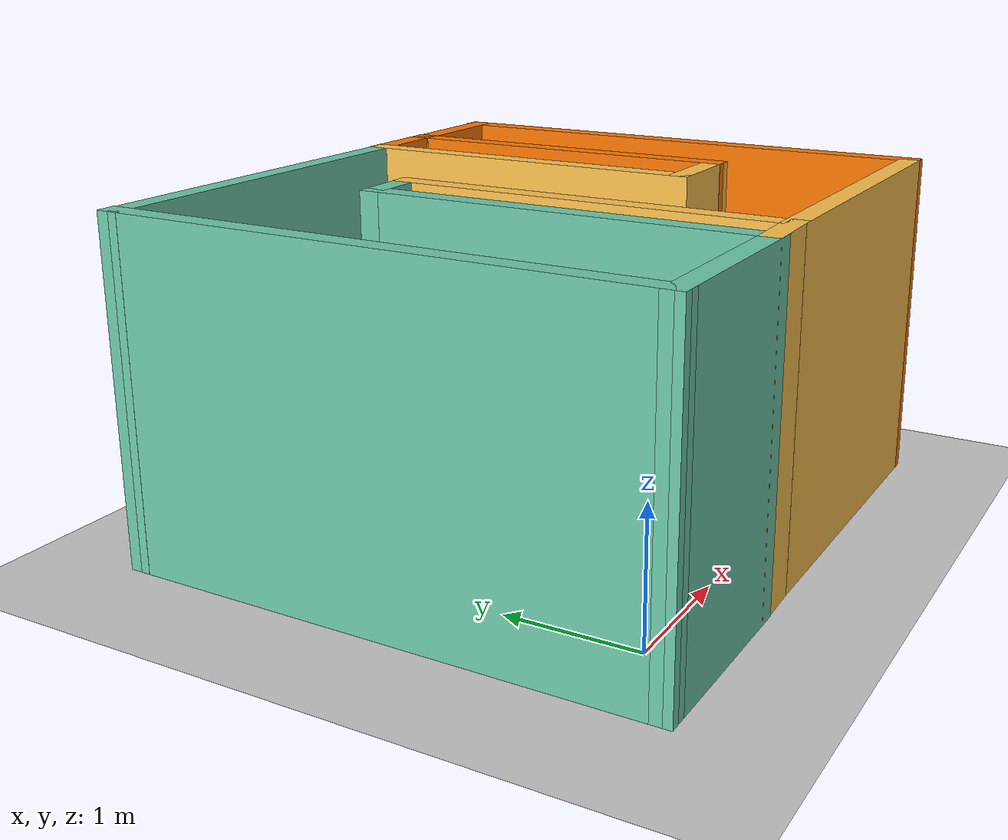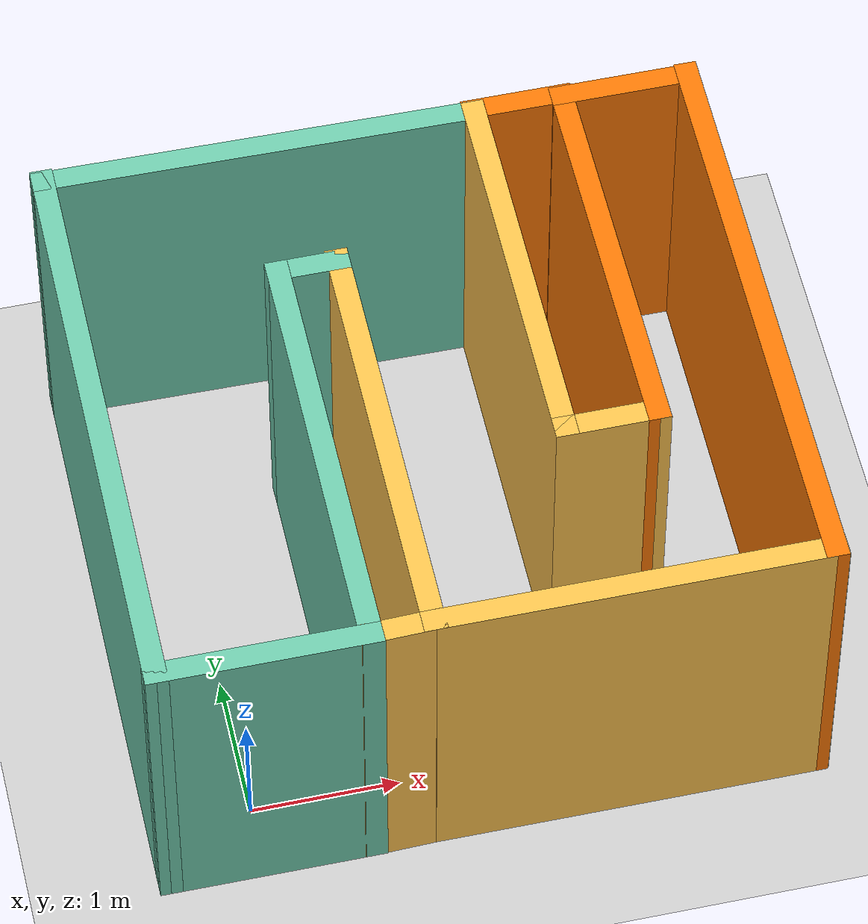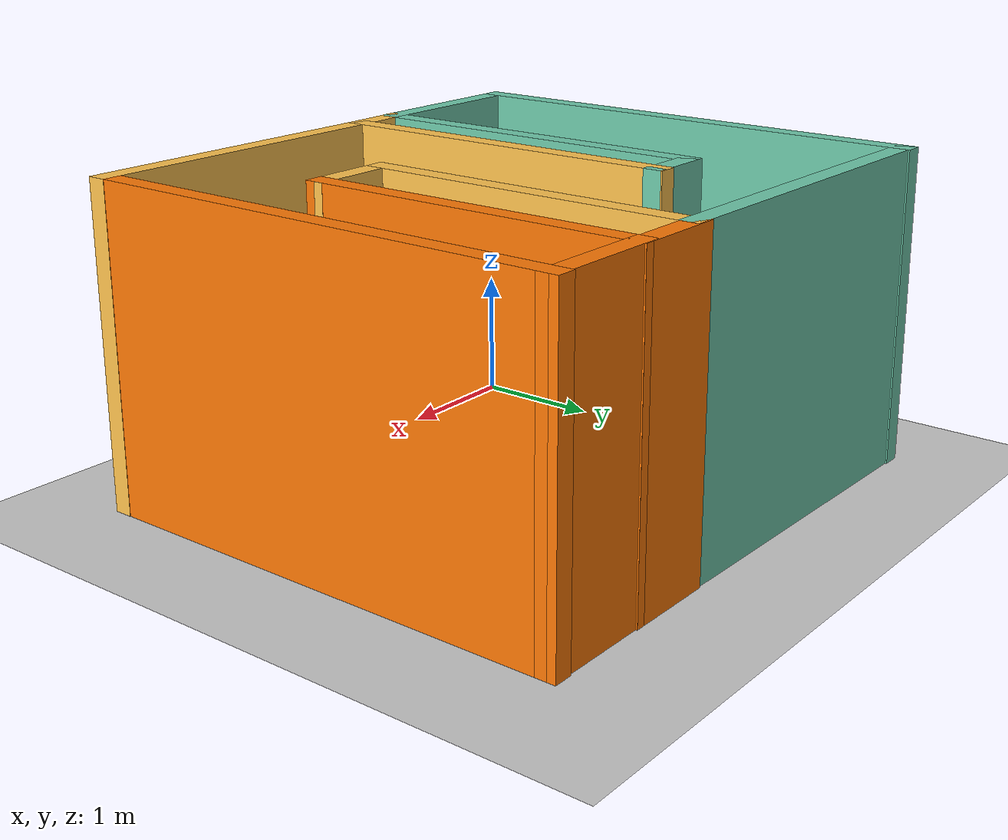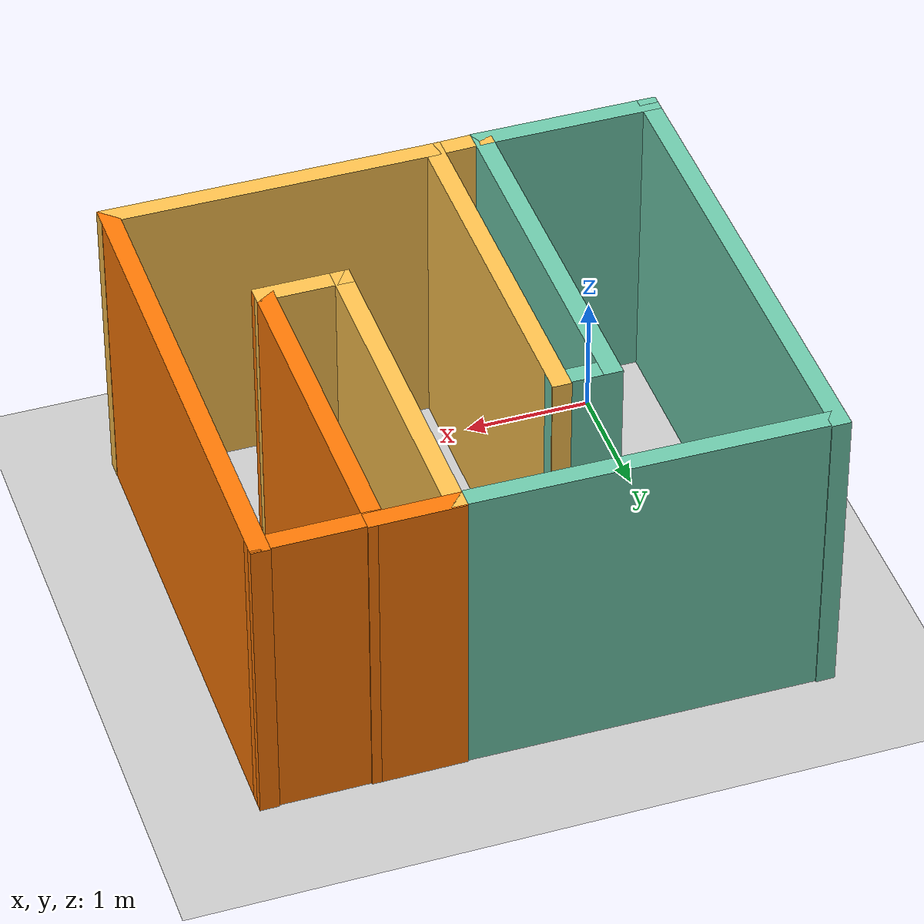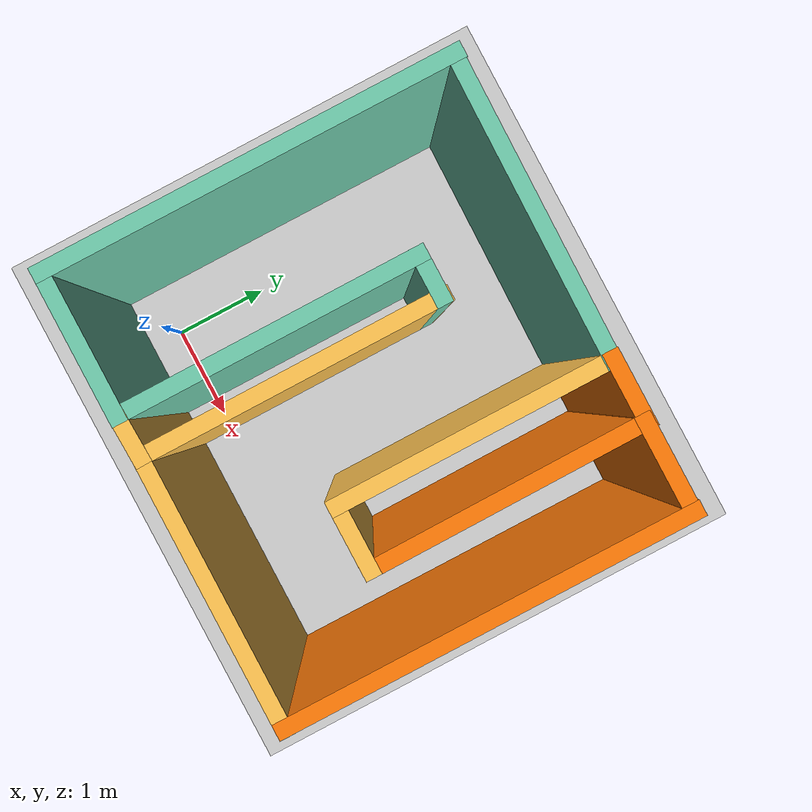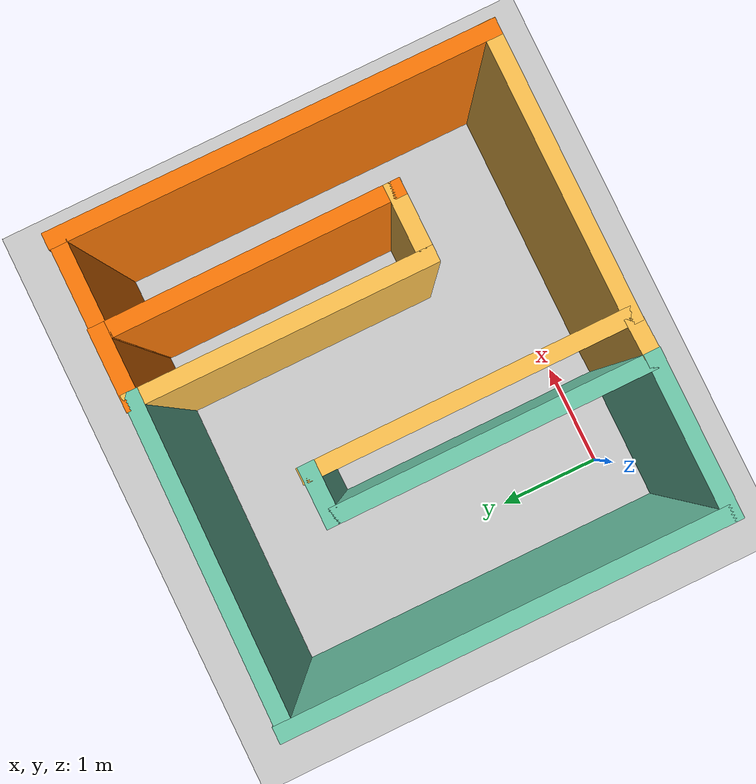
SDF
<sdf version="1.7">
 <world name="default">
  <light name="sun" type="directional">
   <pose>0 0 10 0 -0 0</pose>
   <diffuse>0.8 0.8 0.8 1</diffuse>
   <specular>0.2 0.2 0.2 1</specular>
   <attenuation>
    <range>1000</range>
    <constant>0.9</constant>
    <linear>0.01</linear>
    <quadratic>0.001</quadratic>
   </attenuation>
   <direction>-0.5 0.1 -0.9</direction>
   <spot><inner_angle>0</inner_angle><outer_angle>0</outer_angle><falloff>0</falloff></spot>
  </light>
  <model name="ground_plane">
   <static>1</static>
   <link name="link">
    <collision name="collision">
     <geometry><plane><normal>0 0 1</normal><size>100 100</size></plane></geometry>
     <surface><friction><ode><mu>100</mu><mu2>50</mu2></ode></friction></surface>
    </collision>
    <visual name="visual">
     <cast_shadows>0</cast_shadows>
     <geometry><plane><normal>0 0 1</normal><size>100 100</size></plane></geometry>
     <material>
      <script><uri>file://media/materials/scripts/gazebo.material</uri><name>Gazebo/Grey</name></script>
     </material>
    </visual>
   </link>
  </model>
  <gravity>0 0 -9.8</gravity>
  <magnetic_field>6e-06 2.3e-05 -4.2e-05</magnetic_field>
  <atmosphere type="adiabatic"/>
  <physics type="ode">
   <max_step_size>0.001</max_step_size>
   <real_time_factor>1</real_time_factor>
   <real_time_update_rate>1000</real_time_update_rate>
  </physics>
  <scene><ambient>0.4 0.4 0.4 1</ambient><background>0.7 0.7 0.7 1</background><shadows>1</shadows></scene>
  <audio><device>default</device></audio>
  <spherical_coordinates>
   <surface_model>EARTH_WGS84</surface_model>
   <latitude_deg>0</latitude_deg>
   <longitude_deg>0</longitude_deg>
   <elevation>0</elevation>
   <heading_deg>0</heading_deg>
  </spherical_coordinates>
  <model name="LRSR">
   <pose>1.5386 2.25887 0 0 -0 0</pose>
   <link name="Wall_0">
    <collision name="Wall_0_Collision">
     <geometry><box><size>4.05302 0.15 2.5</size></box></geometry>
     <pose>0 0 1.25 0 -0 0</pose>
    </collision>
    <visual name="Wall_0_Visual">
     <pose>0 0 1.25 0 -0 0</pose>
     <geometry><box><size>4.05302 0.15 2.5</size></box></geometry>
     <material>
      <script><uri>file://media/materials/scripts/gazebo.material</uri><name>Gazebo/Grey</name></script>
      <ambient>0.435294 0.796078 0.67451 1</ambient>
     </material>
     <meta><layer>0</layer></meta>
    </visual>
    <pose>-2.14974 -0.734866 0 0 -0 -1.57374</pose>
   </link>
   <link name="Wall_2">
    <collision name="Wall_2_Collision">
     <geometry><box><size>4.01516 0.15 2.5</size></box></geometry>
     <pose>0 0 1.25 0 -0 0</pose>
    </collision>
    <visual name="Wall_2_Visual">
     <pose>0 0 1.25 0 -0 0</pose>
     <geometry><box><size>4.01516 0.15 2.5</size></box></geometry>
     <material>
      <script><uri>file://media/materials/scripts/gazebo.material</uri><name>Gazebo/Grey</name></script>
      <ambient>0.996078 0.47451 0.0196078 1</ambient>
     </material>
     <meta><layer>0</layer></meta>
    </visual>
    <pose>2.15013 -0.746941 0 0 -0 1.56802</pose>
   </link>
   <link name="Wall_24">
    <collision name="Wall_24_Collision">
     <geometry><box><size>1.50216 0.15 2.5</size></box></geometry>
     <pose>0 0 1.25 0 -0 0</pose>
    </collision>
    <visual name="Wall_24_Visual">
     <pose>0 0 1.25 0 -0 0</pose>
     <geometry><box><size>1.50216 0.15 2.5</size></box></geometry>
     <material>
      <script><uri>file://media/materials/scripts/gazebo.material</uri><name>Gazebo/Grey</name></script>
      <ambient>0.435294 0.796078 0.67451 1</ambient>
     </material>
     <meta><layer>0</layer></meta>
    </visual>
    <pose>-1.47942 -2.68744 0 0 -0 -0.00159</pose>
   </link>
   <link name="Wall_25">
    <collision name="Wall_25_Collision">
     <geometry><box><size>0.546167 0.15 2.5</size></box></geometry>
     <pose>0 0 1.25 0 -0 0</pose>
    </collision>
    <visual name="Wall_25_Visual">
     <pose>0 0 1.25 0 -0 0</pose>
     <geometry><box><size>0.546167 0.15 2.5</size></box></geometry>
     <material>
      <script><uri>file://media/materials/scripts/gazebo.material</uri><name>Gazebo/Grey</name></script>
      <ambient>1 0.764706 0.305882 1</ambient>
     </material>
     <meta><layer>0</layer></meta>
    </visual>
    <pose>-0.605344 -2.68062 0 0 -0 0.029032</pose>
   </link>
   <link name="Wall_26">
    <collision name="Wall_26_Collision">
     <geometry><box><size>2.70426 0.15 2.5</size></box></geometry>
     <pose>0 0 1.25 0 -0 0</pose>
    </collision>
    <visual name="Wall_26_Visual">
     <pose>0 0 1.25 0 -0 0</pose>
     <geometry><box><size>2.70426 0.15 2.5</size></box></geometry>
     <material>
      <script><uri>file://media/materials/scripts/gazebo.material</uri><name>Gazebo/Grey</name></script>
      <ambient>1 0.764706 0.305882 1</ambient>
     </material>
     <meta><layer>0</layer></meta>
    </visual>
    <pose>0.869782 -2.67719 0 0 -0 -0.00182</pose>
   </link>
   <link name="Wall_28">
    <collision name="Wall_28_Collision">
     <geometry><box><size>1 0.15 2.5</size></box></geometry>
     <pose>0 0 1.25 0 -0 0</pose>
    </collision>
    <visual name="Wall_28_Visual">
     <pose>0 0 1.25 0 -0 0</pose>
     <geometry><box><size>1 0.15 2.5</size></box></geometry>
     <material>
      <script><uri>file://media/materials/scripts/gazebo.material</uri><name>Gazebo/Grey</name></script>
      <ambient>0.996078 0.47451 0.0196078 1</ambient>
     </material>
     <meta><layer>0</layer></meta>
    </visual>
    <pose>1.73051 1.17413 0 0 -0 3.14159</pose>
   </link>
   <link name="Wall_29">
    <collision name="Wall_29_Collision">
     <geometry><box><size>0.7385 0.15 2.5</size></box></geometry>
     <pose>0 0 1.25 0 -0 0</pose>
    </collision>
    <visual name="Wall_29_Visual">
     <pose>0 0 1.25 0 -0 0</pose>
     <geometry><box><size>0.7385 0.15 2.5</size></box></geometry>
     <material>
      <script><uri>file://media/materials/scripts/gazebo.material</uri><name>Gazebo/Grey</name></script>
      <ambient>0.996078 0.47451 0.0196078 1</ambient>
     </material>
     <meta><layer>0</layer></meta>
    </visual>
    <pose>1.01126 1.18563 0 0 -0 3.14159</pose>
   </link>
   <link name="Wall_30">
    <collision name="Wall_30_Collision">
     <geometry><box><size>3.01117 0.15 2.5</size></box></geometry>
     <pose>0 0 1.25 0 -0 0</pose>
    </collision>
    <visual name="Wall_30_Visual">
     <pose>0 0 1.25 0 -0 0</pose>
     <geometry><box><size>3.01117 0.15 2.5</size></box></geometry>
     <material>
      <script><uri>file://media/materials/scripts/gazebo.material</uri><name>Gazebo/Grey</name></script>
      <ambient>0.435294 0.796078 0.67451 1</ambient>
     </material>
     <meta><layer>0</layer></meta>
    </visual>
    <pose>-0.713494 1.18963 0 0 -0 3.13076</pose>
   </link>
   <link name="Wall_33">
    <collision name="Wall_33_Collision">
     <geometry><box><size>2.75 0.15 2.5</size></box></geometry>
     <pose>0 0 1.25 0 -0 0</pose>
    </collision>
    <visual name="Wall_33_Visual">
     <pose>0 0 1.25 0 -0 0</pose>
     <geometry><box><size>2.75 0.15 2.5</size></box></geometry>
     <material>
      <script><uri>file://media/materials/scripts/gazebo.material</uri><name>Gazebo/Grey</name></script>
      <ambient>1 0.764706 0.305882 1</ambient>
     </material>
     <meta><layer>0</layer></meta>
    </visual>
    <pose>0.717006 -0.125866 0 0 -0 -1.5708</pose>
   </link>
   <link name="Wall_34">
    <collision name="Wall_34_Collision">
     <geometry><box><size>0.75 0.15 2.5</size></box></geometry>
     <pose>0 0 1.25 0 -0 0</pose>
    </collision>
    <visual name="Wall_34_Visual">
     <pose>0 0 1.25 0 -0 0</pose>
     <geometry><box><size>0.75 0.15 2.5</size></box></geometry>
     <material>
      <script><uri>file://media/materials/scripts/gazebo.material</uri><name>Gazebo/Grey</name></script>
      <ambient>1 0.764706 0.305882 1</ambient>
     </material>
     <meta><layer>0</layer></meta>
    </visual>
    <pose>1.01701 -1.42587 0 0 -0 0</pose>
   </link>
   <link name="Wall_35">
    <collision name="Wall_35_Collision">
     <geometry><box><size>2.76152 0.15 2.5</size></box></geometry>
     <pose>0 0 1.25 0 -0 0</pose>
    </collision>
    <visual name="Wall_35_Visual">
     <pose>0 0 1.25 0 -0 0</pose>
     <geometry><box><size>2.76152 0.15 2.5</size></box></geometry>
     <material>
      <script><uri>file://media/materials/scripts/gazebo.material</uri><name>Gazebo/Grey</name></script>
      <ambient>0.996078 0.47451 0.0196078 1</ambient>
     </material>
     <meta><layer>0</layer></meta>
    </visual>
    <pose>1.31126 -0.120116 0 0 -0 1.5752</pose>
   </link>
   <link name="Wall_37">
    <collision name="Wall_37_Collision">
     <geometry><box><size>3 0.15 2.5</size></box></geometry>
     <pose>0 0 1.25 0 -0 0</pose>
    </collision>
    <visual name="Wall_37_Visual">
     <pose>0 0 1.25 0 -0 0</pose>
     <geometry><box><size>3 0.15 2.5</size></box></geometry>
     <material>
      <script><uri>file://media/materials/scripts/gazebo.material</uri><name>Gazebo/Grey</name></script>
      <ambient>0.435294 0.796078 0.67451 1</ambient>
     </material>
     <meta><layer>0</layer></meta>
    </visual>
    <pose>-0.803344 -1.26137 0 0 -0 1.5708</pose>
   </link>
   <link name="Wall_38">
    <collision name="Wall_38_Collision">
     <geometry><box><size>0.546167 0.15 2.5</size></box></geometry>
     <pose>0 0 1.25 0 -0 0</pose>
    </collision>
    <visual name="Wall_38_Visual">
     <pose>0 0 1.25 0 -0 0</pose>
     <geometry><box><size>0.546167 0.15 2.5</size></box></geometry>
     <material>
      <script><uri>file://media/materials/scripts/gazebo.material</uri><name>Gazebo/Grey</name></script>
      <ambient>0.435294 0.796078 0.67451 1</ambient>
     </material>
     <meta><layer>0</layer></meta>
    </visual>
    <pose>-0.605344 0.163634 0 0 -0 0</pose>
   </link>
   <link name="Wall_39">
    <collision name="Wall_39_Collision">
     <geometry><box><size>3 0.15 2.5</size></box></geometry>
     <pose>0 0 1.25 0 -0 0</pose>
    </collision>
    <visual name="Wall_39_Visual">
     <pose>0 0 1.25 0 -0 0</pose>
     <geometry><box><size>3 0.15 2.5</size></box></geometry>
     <material>
      <script><uri>file://media/materials/scripts/gazebo.material</uri><name>Gazebo/Grey</name></script>
      <ambient>1 0.764706 0.305882 1</ambient>
     </material>
     <meta><layer>0</layer></meta>
    </visual>
    <pose>-0.407344 -1.24987 0 0 -0 -1.5708</pose>
   </link>
   <static>1</static>
  </model>
 </world>
</sdf>
